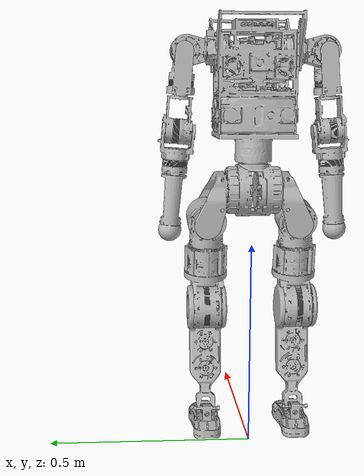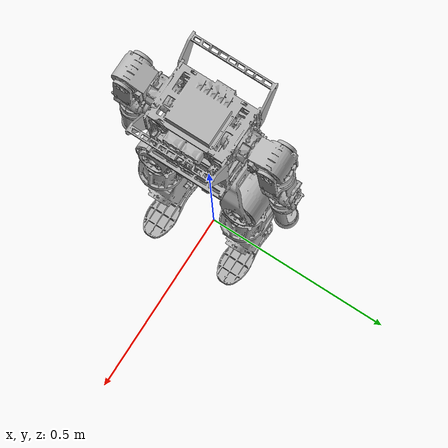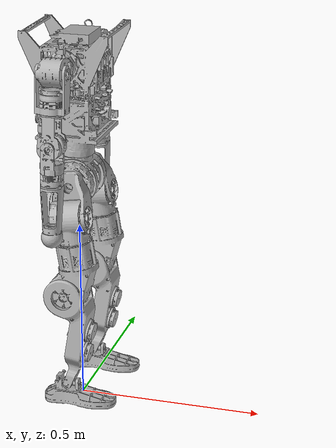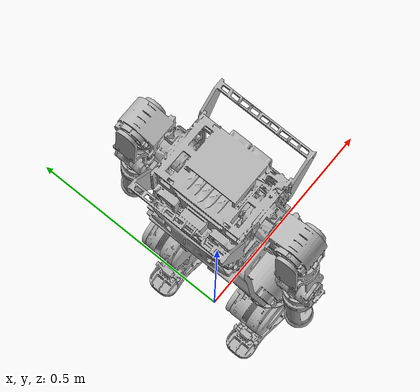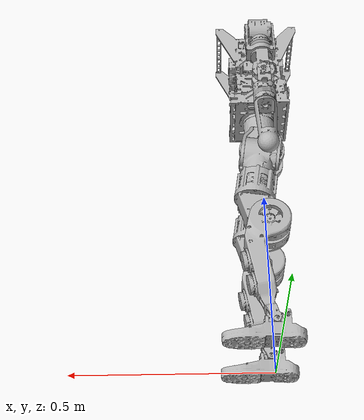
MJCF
<mujoco model="Mini_23dof_rev_1_0">
    <compiler angle="radian" meshdir="meshes_reduce/" autolimits="true"/>

    <default>
        <default class="Mini1">
            <geom condim="1" contype="0" conaffinity="0"/>
            <joint damping="0.05" armature="0.01" frictionloss="0.2"/>

            <default class="hip">
                <default class="hip_pitch">
                    <joint axis="0 1 0" range="-2.67456 2.9105" actuatorfrcrange="-130 130" armature="0.063828"/>
                </default>
                <default class="hip_roll">
                    <joint axis="1 0 0" actuatorfrcrange="-132 132" armature="0.093956787"/>
                </default>
                <default class="hip_yaw">
                    <joint axis="0 0 1" range="-2.44346  2.44346" actuatorfrcrange="-70 70" armature="0.057648938"/>
                </default>
            </default>
            <default class="knee">
                <joint axis="0 1 0" range="-0.19199 2.70526" actuatorfrcrange="-130 130" armature="0.063828"/>
            </default>
            <default class="ankle">
                <default class="ankle_pitch">
                    <joint axis="0 1 0" range="-0.87266 0.5236" actuatorfrcrange="-36 36" armature="0.023328"/>
                </default>
                <default class="ankle_roll">
                    <joint axis="1 0 0" range="-0.2618 0.2618" actuatorfrcrange="-36 36" armature="0.023328"/>
                </default>
            </default>
            <default class="waist">
                <joint axis="0 0 1" range="-2.79252 2.79252" actuatorfrcrange="-70 70" armature="0.02"/>
            </default>
            <default class="shoulder">
                <default class="shoulder_pitch">
                    <joint axis="0 1 0" range="-3.14159 2.44346" actuatorfrcrange="-36 36" armature="0.012"/>
                </default>
                <default class="shoulder_roll">
                    <joint axis="1 0 0" actuatorfrcrange="-36 36" armature="0.012"/>
                </default>
                <default class="shoulder_yaw">
                    <joint axis="0 0 1" range="-2.44346 2.44346" actuatorfrcrange="-36 36" armature="0.012"/>
                </default>
            </default>
            <default class="elbow">
                <joint axis="0 1 0" range="-2.26893 1.5708" actuatorfrcrange="-36 36" armature="0.012"/>
            </default>
            <default class="wrist">
                <default class="wrist_yaw">
                    <joint axis="0 0 1" range="-2.44346 2.44346" actuatorfrcrange="-36 36" armature="0.012"/>
                </default>
            </default>

            <default class="visual">
                <geom group="2" type="mesh" density="0" material="silver" contype="0" conaffinity="0"/>
            </default>
            <default class="collision">
                <geom group="3" rgba=".2 .6 .2 .3" type="capsule" contype="1" conaffinity="1"/>
                <default class="foot_capsule">
                <geom type="capsule" size="0.01"/>
                </default>
            </default>
            <site group="5" rgba="1 0 0 1"/>
        </default>
    </default>

    <asset>
        <material name="silver" rgba="0.7 0.7 0.7 1"/>
        <material name="black" rgba="0.2 0.2 0.2 1"/>
        <material name="gold" rgba="1 0.84 0 1"/>
        <material name="red_staff" rgba="0.8 0 0 1"/>

        <mesh name="pelvis" file="pelvis_link.STL"/>

        <mesh name="left_hip_pitch_link" file="left_hip_pitch_link.STL" />
        <mesh name="left_hip_roll_link" file="left_hip_roll_link.STL" />
        <mesh name="left_hip_yaw_link" file="left_hip_yaw_link.STL" />
        <mesh name="left_knee_link" file="left_knee_link.STL" />
        <mesh name="left_ankle_pitch_link" file="left_ankle_pitch_link.STL" />
        <mesh name="left_ankle_roll_link" file="left_ankle_roll_link.STL" />

        <mesh name="right_hip_pitch_link" file="right_hip_pitch_link.STL" />
        <mesh name="right_hip_roll_link" file="right_hip_roll_link.STL" />
        <mesh name="right_hip_yaw_link" file="right_hip_yaw_link.STL" />
        <mesh name="right_knee_link" file="right_knee_link.STL" />
        <mesh name="right_ankle_pitch_link" file="right_ankle_pitch_link.STL" />
        <mesh name="right_ankle_roll_link" file="right_ankle_roll_link.STL" />

        <mesh name="torso_link" file="torso_link.STL" />
        <mesh name="left_shoulder_pitch_link" file="left_shoulder_pitch_link.STL" />
        <mesh name="left_shoulder_roll_link" file="left_shoulder_roll_link.STL" />
        <mesh name="left_shoulder_yaw_link" file="left_shoulder_yaw_link.STL" />
        <mesh name="left_elbow_link" file="left_elbow_link.STL" />
        <mesh name="left_wrist_yaw_link" file="left_wrist_yaw_link.STL"/>

        <mesh name="right_shoulder_pitch_link" file="right_shoulder_pitch_link.STL" />
        <mesh name="right_shoulder_roll_link" file="right_shoulder_roll_link.STL" />
        <mesh name="right_shoulder_yaw_link" file="right_shoulder_yaw_link.STL" />
        <mesh name="right_elbow_link" file="right_elbow_link.STL" />
        <mesh name="right_wrist_yaw_link" file="right_wrist_yaw_link.STL"/>

    </asset>

    <worldbody>
        <light name="spotlight" mode="targetbodycom" target="pelvis_link" pos="0 -2 4" exponent="20"/>
        <body name="pelvis_link" pos="0 0 0.7" childclass="Mini1">
            <camera name="tracking" pos="1.734 -1.135 .35" xyaxes="0.552 0.834 -0.000 -0.170 0.112 0.979" mode="trackcom"/>
            <inertial pos="-7.04e-06 0 -0.0639753" quat="0.7057301 0.7046142 0.051838 -0.0526931" mass="3.256" diaginertia="0.0079273 0.0077761 0.0071866"/>
            <freejoint name="floating_base_joint"/>
            <geom class="visual" mesh="pelvis"/>

            <site name="imu_in_pelvis" size="0.01" pos="0.0 0.0 -0.122" />

            <body name="left_hip_pitch_link" pos="0 0.0645 -0.06475">
                <inertial pos="0.0121766 0.0395787 -0.0603924" quat="0.8412368 -0.1359165 0.1585852 0.4986964" mass="1.599" diaginertia="0.0036854 0.0032082 0.0020596"/>
                <joint name="left_hip_pitch_joint" class="hip_pitch"/>
                <geom class="visual" mesh="left_hip_pitch_link"/>

                <body name="left_hip_roll_link" pos="0.01176 0.0455 -0.074072" quat="0.9969032 0 -0.0786387 0">
                    <inertial pos="-0.0003054 0 -0.0300273" quat="0.4975255 0.5024623 0.5024623 0.4975255" mass="0.43" diaginertia="0.0011643 0.0009877 0.0007031"/>
                    <joint name="left_hip_roll_joint" pos="0 0 0" range="-0.5236 2.26893" class="hip_roll" />
                    <geom class="visual" mesh="left_hip_roll_link"/>
                    <geom name="left_hip_collision" class="collision" size="0.045" fromto="0.00 0.0 0.005 0.00 0.0 -0.12"/>

                    <body name="left_hip_yaw_link" pos="0 0 -0.076">
                        <inertial pos="-0.0179351 -0.0003662 -0.0780697" quat="0.7166074 -0.1417192 -0.1565716 0.6647366" mass="2.65639" diaginertia="0.0111069 0.0105039 0.0035003"/>
                        <joint name="left_hip_yaw_joint" class="hip_yaw"/>
                        <geom class="visual" mesh="left_hip_yaw_link"/>

                        <body name="left_knee_link" pos="-0.045 0 -0.13245" quat="0.9969032 0 0.0786387 0">
                            <inertial pos="0.0218609 0 -0.0908802" quat="0.9995181 -0.0007215 0.0308954 -0.002931" mass="2.25568" diaginertia="0.013668 0.013413 0.0027884"/>
                            <joint name="left_knee_joint" class="knee"/>
                            <geom class="visual" mesh="left_knee_link"/>
                            <geom name="left_knee_collision" euler="1.5707 0 0" class="collision" type="cylinder" size="0.048 0.045"/>
                            <geom name="left_knee2_collision" pos="0.052 0 -0.04" euler="0 0.2 0" class="collision" type="box" size="0.005 0.042 0.015"/>
                            <geom name="left_shin_collision" class="collision" size="0.042" fromto="0.035 0.0 -0.095 0.018 0.0 -0.18"/>
                            <geom name="left_shin2_collision" class="collision" size="0.02" fromto="0.0065 0.0 -0.245 0.0045 0.0 -0.26"/>

                            <body name="left_ankle_pitch_link" pos="0 0 -0.265">
                                <inertial pos="0 0 0" quat="0 0.7071068 0 0.7071068" mass="0.07679" diaginertia="1.292e-05 1.214e-05 4.67e-06"/>
                                <joint name="left_ankle_pitch_joint" class="ankle_pitch"/>
                                <geom class="visual" mesh="left_ankle_pitch_link"/>

                                <body name="left_ankle_roll_link">
                                    <site name="left_foot" rgba="1 0 0 1"/>
                                    <inertial pos="-0.0003431 0 -0.0205564" quat="0.5506354 0.4436072 0.4437003 0.5505846" mass="0.62798" diaginertia="0.0008024 0.0007779 0.0002549"/>
                                    <joint name="left_ankle_roll_joint" class="ankle_roll"/>
                                    <geom class="visual" mesh="left_ankle_roll_link"/>

                                    <geom name="left_foot1_collision" class="foot_capsule" fromto="-0.05 -0.018 -0.035 0.08 -0.018 -0.035"/>
                                    <geom name="left_foot2_collision" class="foot_capsule" fromto="-0.05 -0.009 -0.035 0.085 -0.009 -0.035"/>
                                    <geom name="left_foot3_collision" class="foot_capsule" fromto="-0.05 0.0 -0.035 0.085 0.0 -0.035"/>
                                    <geom name="left_foot4_collision" class="foot_capsule" fromto="-0.05 0.009 -0.035 0.085 0.009 -0.035"/>
                                    <geom name="left_foot5_collision" class="foot_capsule" fromto="-0.05 0.018 -0.035 0.08 0.018 -0.035"/>

                                </body>
                            </body>
                        </body>
                    </body>
                </body>
            </body>

            <body name="right_hip_pitch_link" pos="0 -0.0645 -0.06475">
                <inertial pos="0.0121766 -0.0395787 -0.0603924" quat="0.4939296 0.1578684 -0.1367706 0.8440408" mass="1.599" diaginertia="0.0037011 0.0032296 0.0020721"/>
                <joint name="right_hip_pitch_joint" class="hip_pitch"/>
                <geom class="visual" mesh="right_hip_pitch_link"/>

                <body name="right_hip_roll_link" pos="0.01176 -0.0455 -0.074072" quat="0.9969032 0 -0.0786387 0">
                    <inertial pos="-0.0003054 0 -0.0300273" quat="0.4975255 0.5024623 0.5024623 0.4975255" mass="0.43" diaginertia="0.0011643 0.0009877 0.0007031"/>
                    <joint name="right_hip_roll_joint" pos="0 0 0" range="-2.26893 0.5236"  class="hip_roll"/>
                    <geom class="visual" mesh="right_hip_roll_link"/>
                    <geom name="right_hip_collision" class="collision" size="0.045" fromto="0.00 0.0 0.005 0.00 0.0 -0.12"/>

                    <body name="right_hip_yaw_link" pos="0 0 -0.076">
                        <inertial pos="-0.0179351 -0.0003662 -0.0780697" quat="0.7166074 -0.1417192 -0.1565716 0.6647366" mass="2.65639" diaginertia="0.0111069 0.0105039 0.0035003"/>
                        <joint name="right_hip_yaw_joint" class="hip_yaw"/>
                        <geom class="visual" mesh="right_hip_yaw_link"/>

                        <body name="right_knee_link" pos="-0.045 0 -0.13245" quat="0.9969032 0 0.0786387 0">
                            <inertial pos="0.0218594 0 -0.0908886" quat="0.9995192 0.0007193 0.0308614 0.002915" mass="2.25568" diaginertia="0.0137054 0.0134502 0.0028247"/>
                            <joint name="right_knee_joint" class="knee"/>
                            <geom class="visual" mesh="right_knee_link"/>
                            <geom name="right_knee_collision" euler="1.5707 0 0" class="collision" type="cylinder" size="0.048 0.045"/>
                            <geom name="right_knee2_collision" pos="0.052 0 -0.04" euler="0 0.2 0" class="collision" type="box" size="0.005 0.042 0.015"/>
                            <geom name="right_shin_collision" class="collision" size="0.042" fromto="0.035 0.0 -0.095 0.018 0.0 -0.18"/>
                            <geom name="right_shin2_collision" class="collision" size="0.02" fromto="0.0065 0.0 -0.245 0.0045 0.0 -0.26"/>

                            <body name="right_ankle_pitch_link" pos="0 0 -0.265">
                                <inertial pos="0 0 0" quat="0 0.7071068 0 0.7071068" mass="0.07679" diaginertia="1.292e-05 1.214e-05 4.67e-06"/>
                                <joint name="right_ankle_pitch_joint" class="ankle_pitch"/>
                                <geom class="visual" mesh="right_ankle_pitch_link"/>

                                <body name="right_ankle_roll_link">
                                    <site name="right_foot" pos="0 0 0"/>
                                    <inertial pos="-0.0003427 0 -0.0205569" quat="0.5506331 0.4436453 0.443674 0.5505774" mass="0.62797" diaginertia="0.0008024 0.0007779 0.0002548"/>
                                    <joint name="right_ankle_roll_joint" class="ankle_roll"/>
                                    <geom class="visual" mesh="right_ankle_roll_link"/>

                                    <geom name="right_foot1_collision" class="foot_capsule" fromto="-0.05 -0.018 -0.035 0.08 -0.018 -0.035"/>
                                    <geom name="right_foot2_collision" class="foot_capsule" fromto="-0.05 -0.009 -0.035 0.085 -0.009 -0.035"/>
                                    <geom name="right_foot3_collision" class="foot_capsule" fromto="-0.05 0.0 -0.035 0.085 0.0 -0.035"/>
                                    <geom name="right_foot4_collision" class="foot_capsule" fromto="-0.05 0.009 -0.035 0.085 0.009 -0.035"/>
                                    <geom name="right_foot5_collision" class="foot_capsule" fromto="-0.05 0.018 -0.035 0.08 0.018 -0.035"/>

                                </body>
                            </body>
                        </body>
                    </body>
                </body>
            </body>

            <body name="torso_link" pos="0 0 0">
                <inertial pos="-0.0057874 -0.0001375 0.1582107" quat="0.9998963 -0.0006793 -0.0143572 -0.0009131" mass="7.957" diaginertia="0.0799016 0.0676421 0.0259355"/>
                <joint name="waist_joint" pos="0 0 0" class="waist" />
                <geom class="visual" mesh="torso_link"/>
                <geom name="torso_collision" class="collision" type="box" size="0.08 0.1 0.125" pos="0 0 0.185"/>

                <site name="imu_in_torso" size="0.01" pos="-0.03959 -0.00224 0.14792"/>

                <body name="left_shoulder_pitch_link" pos="0 0.1145 0.262">
                    <inertial pos="-0.0016388 0.0465983 9.687e-05" quat="0.5512101 0.422823 -0.5669166 0.4427117" mass="0.815" diaginertia="0.0003775 0.0003006 0.0002276"/>
                    <joint name="left_shoulder_pitch_joint" class="shoulder_pitch"/>
                    <geom class="visual" mesh="left_shoulder_pitch_link"/>

                    <body name="left_shoulder_roll_link" pos="0 0.0525 0" quat="0.999229 0.0392599 0 0">
                        <inertial pos="-0.0037489 0 -0.0677716" quat="0.703235 -0.074283 -0.0744955 0.7031308" mass="0.908" diaginertia="0.0006071 0.0004896 0.0002621"/>
                        <joint name="left_shoulder_roll_joint" range="-0.20944 3.35103" class="shoulder_roll"/>
                        <geom class="visual" mesh="left_shoulder_roll_link"/>

                        <body name="left_shoulder_yaw_link" pos="-0.00445 0 -0.1005">
                            <inertial pos="-0.0001083 0.002638 -0.0736062" quat="0.9999795 0.0028441 -0.0056822 -0.0008463" mass="1.043" diaginertia="0.0010392 0.00091 0.0003354"/>
                            <joint name="left_shoulder_yaw_joint" class="shoulder_yaw"/>
                            <geom class="visual" mesh="left_shoulder_yaw_link"/>
                            <geom name="left_shoulder_yaw_collision" class="collision" size="0.031" fromto="0.00 0.0 -0.085 0.00 0.0 0.1"/>

                            <body name="left_elbow_link" pos="0 0 -0.08575">
                                <inertial pos="-0.0001013 0.0008858 -0.0659587" quat="0.9929388 0.1185092 -0.00443 0.0028945" mass="0.573" diaginertia="0.0004153 0.0003379 0.0001735"/>
                                <joint name="left_elbow_joint" class="elbow"/>
                                <geom class="visual" mesh="left_elbow_link"/>
                                <geom name="left_elbow_yaw_collision" class="collision" size="0.022" fromto="0.0 0.0 -0.23 0.0 0.0 -0.06"/>
                                <body name="left_wrist_yaw_link" pos="0 0 -0.09975">
                                    <inertial pos="0.0002026 0 -0.0650613" quat="0.707104 -0.0019687 -0.0019687 0.707104" mass="0.422" diaginertia="0.0012001 0.0011344 0.0001592"/>
                                    <joint name="left_wrist_yaw_joint" class="wrist_yaw"/>
                                    <geom class="visual" mesh="left_wrist_yaw_link"/>
                                    <geom  class="collision" type="mesh" rgba="0.752941 0.752941 0.752941 1" mesh="left_wrist_yaw_link"/>

                                </body>
                            </body>
                        </body>
                    </body>
                </body>

                <body name="right_shoulder_pitch_link" pos="0 -0.1145 0.262">
                    <inertial pos="-0.0016388 -0.0465983 9.687e-05" quat="0.4222955 0.5506507 -0.4432103 0.5674636" mass="0.815" diaginertia="0.0003775 0.0003006 0.0002276"/>
                    <joint name="right_shoulder_pitch_joint" class="shoulder_pitch"/>
                    <geom class="visual" mesh="right_shoulder_pitch_link"/>

                    <body name="right_shoulder_roll_link" pos="0 -0.0525 0" quat="0.999229 -0.0392599 0 0">
                        <inertial pos="-0.0037489 0 -0.0677716" quat="0.703235 -0.074283 -0.0744955 0.7031308" mass="0.908" diaginertia="0.0006071 0.0004896 0.0002621"/>
                        <joint name="right_shoulder_roll_joint" range="-3.35103 0.20944" class="shoulder_roll"/>
                        <geom class="visual" mesh="right_shoulder_roll_link"/>

                        <body name="right_shoulder_yaw_link" pos="-0.00445 0 -0.1005">
                            <inertial pos="-0.0001083 -0.002638 -0.0736062" quat="0.9999799 -0.0028377 -0.0056765 7.281162e-05" mass="1.043" diaginertia="0.0010392 0.00091 0.0003354"/>
                            <joint name="right_shoulder_yaw_joint" class="shoulder_yaw"/>
                            <geom class="visual" mesh="right_shoulder_yaw_link"/>
                            <geom name="right_shoulder_yaw_collision" class="collision" size="0.031" fromto="0.00 0.0 -0.085 0.00 0.0 0.1"/>

                            <body name="right_elbow_link" pos="0 0 -0.08575">
                                <inertial pos="-0.0001013 -0.0008858 -0.0659587" quat="0.9929399 -0.1185121 -0.0041907 -0.0027548" mass="0.573" diaginertia="0.0004153 0.0003379 0.0001735"/>
                                <joint name="right_elbow_joint" class="elbow"/>
                                <geom class="visual" mesh="right_elbow_link"/>
                                <geom name="right_elbow_yaw_collision" class="collision" size="0.022" fromto="0.0 0.0 -0.23 0.0 0.0 -0.06"/>
                                <body name="right_wrist_yaw_link" pos="0 0 -0.09975">
                                    <inertial pos="0.0002026 0 -0.0650613" quat="0.707104 -0.0019687 -0.0019687 0.707104" mass="0.422" diaginertia="0.0012001 0.0011344 0.0001592"/>
                                    <joint name="right_wrist_yaw_joint" class="wrist_yaw"/>
                                    <geom class="visual" mesh="right_wrist_yaw_link"/>
                                    <geom class="collision" type="mesh" rgba="0.752941 0.752941 0.752941 1" mesh="right_wrist_yaw_link"/>

                                </body>
                            </body>
                        </body>
                    </body>
                </body>

            </body>
        </body>
    </worldbody>

    <contact>
        <exclude body1="left_elbow_link" body2="left_shoulder_yaw_link"/>
        <exclude body1="right_elbow_link" body2="right_shoulder_yaw_link"/>
        <exclude body1="left_elbow_link" body2="left_wrist_yaw_link"/>
        <exclude body1="right_elbow_link" body2="right_wrist_yaw_link"/>
        <exclude body1="pelvis_link" body2="right_hip_roll_link"/>
        <exclude body1="pelvis_link" body2="left_hip_roll_link"/>
    </contact>
    <sensor>
        <gyro name="imu_ang_vel" site="imu_in_pelvis"/>
        <velocimeter name="imu_lin_vel" site="imu_in_pelvis"/>
        <accelerometer name="imu_lin_acc" site="imu_in_pelvis"/>
        <subtreeangmom name="root_angmom" body="pelvis_link"/>
    </sensor>
</mujoco>
